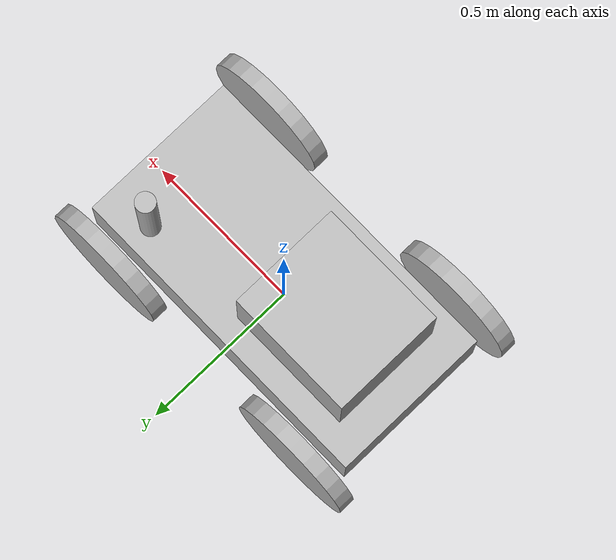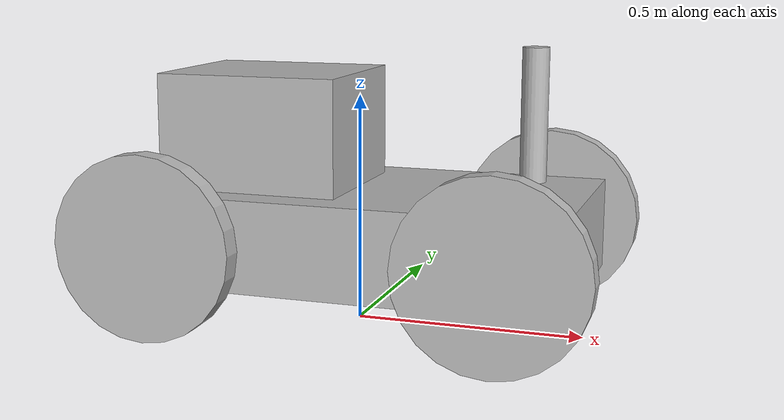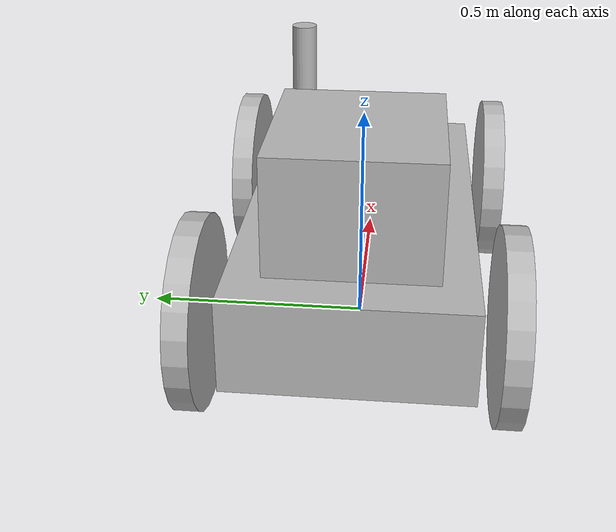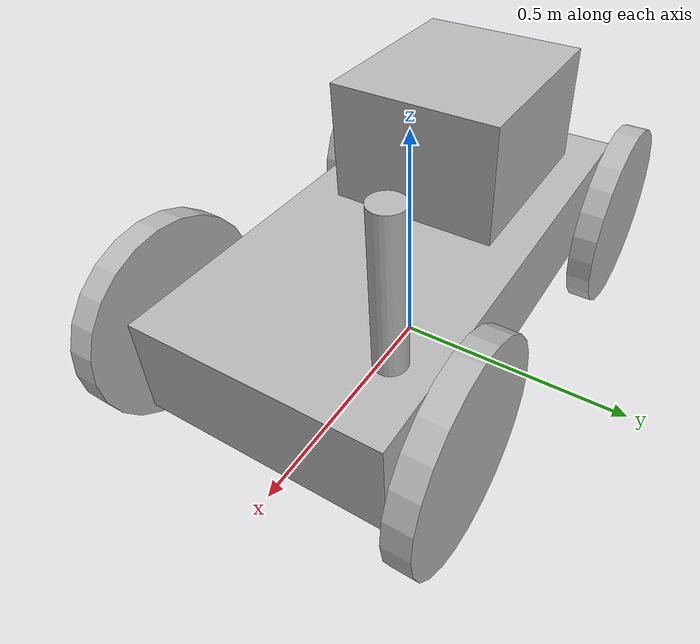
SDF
<?xml version='1.0'?>
<sdf version='1.4'>
  <model name="my_robot">
  <static>false</static>
   <link name='chassis'>
    <pose>0 0 .2 0 0 0</pose>

      <collision name='collision'>
        <geometry>
          <box>
            <size>1 .5 .20</size>
          </box>
        </geometry>
      </collision>

      <visual name='visual'>
        <geometry>
         <box>
           <size>1 .5 .20</size>
          </box>
        </geometry>
      </visual>
    </link>
      <link name="left_wheel_1">
        <pose>0.37 0.31 0.2 0 1.5707 1.5707</pose>
        <collision name="collision">
          <geometry>
            <cylinder>
              <radius>.2</radius>
              <length>.05</length>
            </cylinder>
          </geometry>
        </collision>
        <visual name="visual">
          <geometry>
            <cylinder>
              <radius>.2</radius>
              <length>.05</length>
            </cylinder>
          </geometry>
        </visual>
      </link>
      <link name="left_wheel_2">
        <pose>-0.37 0.31 0.2 0 1.5707 1.5707</pose>
        <collision name="collision">
          <geometry>
            <cylinder>
              <radius>.2</radius>
              <length>.05</length>
            </cylinder>
          </geometry>
        </collision>
        <visual name="visual">
          <geometry>
            <cylinder>
              <radius>.2</radius>
              <length>.05</length>
            </cylinder>
          </geometry>
        </visual>
      </link>

     <link name="right_wheel_1">
        <pose>0.37 -0.31 0.2 0 1.5707 1.5707</pose>
        <collision name="collision">
          <geometry>
            <cylinder>
              <radius>.2</radius>
              <length>.05</length>
            </cylinder>
          </geometry>
        </collision>
        <visual name="visual">
          <geometry>
            <cylinder>
              <radius>.2</radius>
              <length>.05</length>
            </cylinder>
          </geometry>
        </visual>
      </link>
     <link name="right_wheel_2">
        <pose>-0.37 -0.31 0.2 0 1.5707 1.5707</pose>
        <collision name="collision">
          <geometry>
            <cylinder>
              <radius>.2</radius>
              <length>.05</length>
            </cylinder>
          </geometry>
        </collision>
        <visual name="visual">
          <geometry>
            <cylinder>
              <radius>.2</radius>
              <length>.05</length>
            </cylinder>
          </geometry>
        </visual>
      </link>
      <joint type="revolute" name="left_wheel_1_hinge">
        <pose>0 0 -0.03 0 0 0</pose>
        <child>left_wheel_1</child>
        <parent>chassis</parent>
        <axis>
          <xyz>0 1 0</xyz>
        </axis>
      </joint>

      <joint type="revolute" name="right_wheel_1_hinge">
        <pose>0 0 0.03 0 0 0</pose>
        <child>right_wheel_1</child>
        <parent>chassis</parent>
        <axis>
          <xyz>0 1 0</xyz>
        </axis>
      </joint>
      <joint type="revolute" name="left_wheel_2_hinge">
        <pose>0 0 -0.03 0 0 0</pose>
        <child>left_wheel_2</child>
        <parent>chassis</parent>
        <axis>
          <xyz>0 1 0</xyz>
        </axis>
      </joint>

      <joint type="revolute" name="right_wheel_2_hinge">
        <pose>0 0 0.03 0 0 0</pose>
        <child>right_wheel_2</child>
        <parent>chassis</parent>
        <axis>
          <xyz>0 1 0</xyz>
        </axis>
      </joint>
  <link name='driver_box'>
    <pose>-0.2 0 .4 0 0 0</pose>

      <collision name='collision'>
        <geometry>
          <box>
            <size>0.4 .35 .30</size>
          </box>
        </geometry>
      </collision>

      <visual name='visual'>
        <geometry>
         <box>
           <size>0.4 .35 .30</size>
          </box>
        </geometry>
      </visual>
    </link>
     <link name="exhaust_pipe">
        <pose>0.35 0.17 0.4 0 0 1</pose>
        <collision name="collision">
          <geometry>
            <cylinder>
              <radius>.03</radius>
              <length>.5</length>
            </cylinder>
          </geometry>
        </collision>
        <visual name="visual">
          <geometry>
            <cylinder>
              <radius>.03</radius>
              <length>.4</length>
            </cylinder>
          </geometry>
        </visual>
      </link>

  </model>
</sdf>
